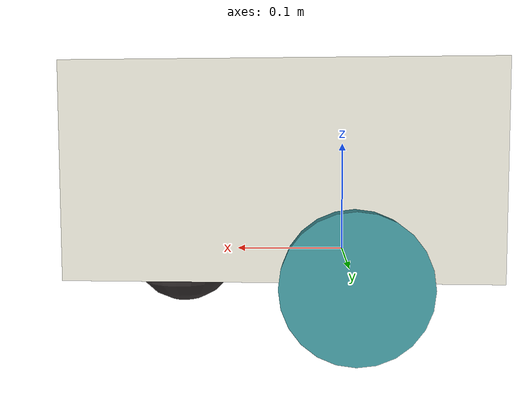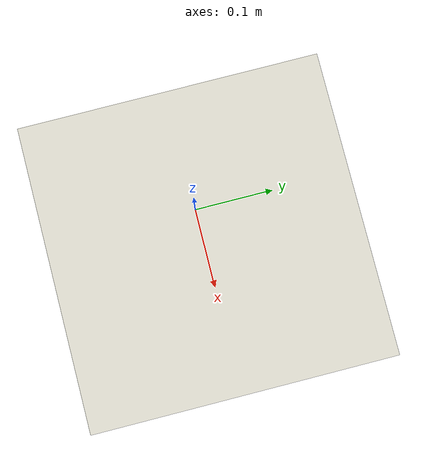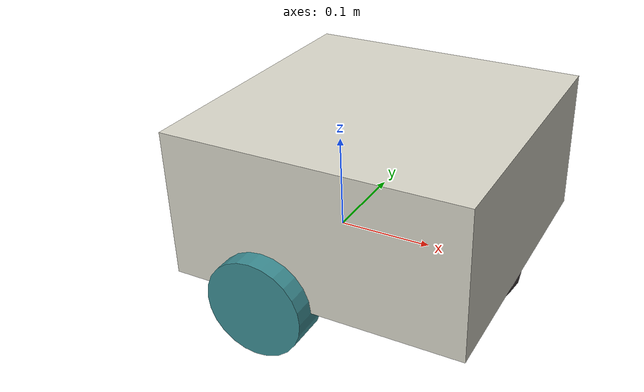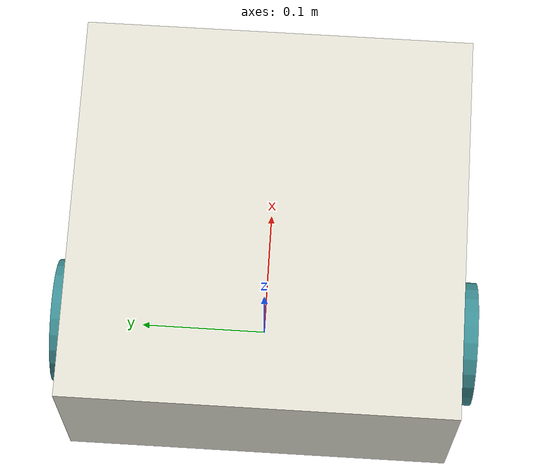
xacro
<?xml version="1.0"?>
<robot xmlns:xacro="http://www.ros.org/wiki/xacro">
    <!-- Robot size -->
    <!-- Length = 300mm-->
    <!-- Width = 300mm-->
    <!-- Height = 150mm-->

    <xacro:include filename="motor_functions.xacro" />

    <link name="base_link">
    </link>

    <!-- CHASSIS LINK -->

    <joint name="chassis_joint" type="fixed">
        <parent link="base_link"/>
        <child link="chassis_link"/>
        <origin xyz="-0.1 0.0 0.0" rpy="0.0 0.0 0.0"/>
    </joint>

    <link name="chassis_link">
        <visual>
            <origin xyz="0.15 0.0 0.075" rpy="0.0 0.0 0.0"/>
            <geometry>
                <box size="0.3 0.3 0.15"/>
            </geometry>
            <material name="WhiteGrey" />
        </visual>
        <collision>
            <origin xyz="0.15 0.0 0.075" rpy="0.0 0.0 0.0"/>
            <geometry>
                <box size="0.3 0.3 0.15"/>
            </geometry>
        </collision>
        <xacro:inertial_box mass="0.5" x="0.3" y="0.3" z="0.15">
            <origin xyz="0.15 0.0 0.075" rpy="0.0 0.0 0.0"/>
        </xacro:inertial_box>
    </link>

    <gazebo reference="chassis_link">
        <visual>
            <material>
                <ambient>0.8509 0.8431 0.7921 1.0</ambient>
                <diffuse>0.8509 0.8431 0.7921 1.0</diffuse>
                <specular>0.8509 0.8431 0.7921 1.0 1.0</specular>
            </material>
        </visual>
    </gazebo>

    <!-- LEFT WHEEL -->

    <joint name="left_wheel_joint" type="continuous">
        <parent link="base_link"/>
        <child link="left_wheel_link"/>
        <origin xyz="0.0 0.15 0.0" rpy="-${pi/2} 0.0 0.0"/>
        <axis xyz="0.0 0.0 1.0"/>
    </joint>

    <link name="left_wheel_link">
        <visual>
            <origin xyz="0.0 0.0 0.0" rpy="0.0 0.0 0.0"/>
            <geometry>
                <cylinder radius="0.05" length="0.04"/>
            </geometry>
            <material name="LightBlueGreen" />
        </visual>
        <collision>
            <origin xyz="0.0 0.0 0.0" rpy="0.0 0.0 0.0"/>
            <geometry>
                <cylinder radius="0.05" length="0.04"/>
            </geometry>
        </collision>
        <xacro:inertial_cylinder mass="0.1" length="0.04" radius="0.05">
            <origin xyz="0.0 0.0 0.0" rpy="0.0 0.0 0.0"/>
        </xacro:inertial_cylinder>
    </link>

    <gazebo reference="left_wheel_link">
        <visual>
            <material>
                <ambient>0.2353 0.5529 0.5764 1.0</ambient>
                <diffuse>0.2353 0.5529 0.5764 1.0</diffuse>
                <specular>0.2353 0.5529 0.5764 1.0 1.0</specular>
            </material>
        </visual>
    </gazebo>

    <!-- RIGHT WHEEL -->

    <joint name="right_wheel_joint" type="continuous">
        <parent link="base_link"/>
        <child link="right_wheel_link"/>
        <origin xyz="0.0 -0.15 0.0" rpy="${pi/2} 0.0 0.0"/>
        <axis xyz="0.0 0.0 1.0"/>
    </joint>

    <link name="right_wheel_link">
        <visual>
            <origin xyz="0.0 0.0 0.0" rpy="0.0 0.0 0.0"/>
            <geometry>
                <cylinder radius="0.05" length="0.04"/>
            </geometry>
            <material name="LightBlueGreen" />
        </visual>
        <collision>
            <origin xyz="0.0 0.0 0.0" rpy="0.0 0.0 0.0"/>
            <geometry>
                <cylinder radius="0.05" length="0.04"/>
            </geometry>
        </collision>
        <xacro:inertial_cylinder mass="0.1" length="0.04" radius="0.05">
            <origin xyz="0.0 0.0 0.0" rpy="0.0 0.0 0.0"/>
        </xacro:inertial_cylinder>
    </link>

    <gazebo reference="right_wheel_link">
        <visual>
            <material>
                <ambient>0.2353 0.5529 0.5764 1.0</ambient>
                <diffuse>0.2353 0.5529 0.5764 1.0</diffuse>
                <specular>0.2353 0.5529 0.5764 1.0 1.0</specular>
            </material>
        </visual>
    </gazebo>

    <!-- CASTER WHEEL -->

    <joint name="caster_wheel_joint" type="fixed">
        <parent link="chassis_link"/>
        <child link="caster_wheel_link"/>
        <origin xyz="0.25 0.0 0.0" rpy="0.0 0.0 0.0"/>
    </joint>

    <link name="caster_wheel_link">
        <visual>
            <origin xyz="0.0 0.0 0.0" rpy="0.0 0.0 0.0"/>
            <geometry>
                <sphere radius="0.05"/>
            </geometry>
            <material name="BrownBlack"/>
        </visual>
        <collision>
            <origin xyz="0.0 0.0 0.0" rpy="0.0 0.0 0.0"/>
            <geometry>
                <sphere radius="0.04"/>
            </geometry>
        </collision>
        <xacro:inertial_sphere mass="0.1" radius="0.05">
            <origin xyz="0.0 0.0 0.0" rpy="0.0 0.0 0.0"/>
        </xacro:inertial_sphere>
    </link>

    <gazebo reference="caster_wheel_link">
        <visual>
            <material>
                <ambient>0.2313 0.2078 0.2078 1.0</ambient>
                <diffuse>0.2313 0.2078 0.2078 1.0</diffuse>
                <specular>0.2313 0.2078 0.2078 1.0 1.0</specular>
            </material>
        </visual>
        <mu1 value="0.001"/>
        <mu2 value="0.001"/>
    </gazebo>

</robot>

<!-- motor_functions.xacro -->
<robot xmlns:xacro="http://www.ros.org/wiki/xacro">

    <!-- Colors -->
    <material name="WhiteGrey">
        <color rgba="${217/255} ${215/255} ${202/255} 1.0" /> **0.8509 0.8431 0.7921 1.0**
    </material>

    <material name="LightBlueGreen">
        <color rgba="${60/255} ${141/255} ${147/255} 1.0" />**0.2353 0.5529 0.5764 1.0**
    </material>

    <material name="DarkBlueGreen">
        <color rgba="${31/255} ${69/255} ${77/255} 1.0" />**0.1215 0.2705 0.3019 1.0**
    </material>

    <material name="Brown">
        <color rgba="${115/255} ${96/255} ${79/255} 1.0" />**0.4509 0.3764 0.3098 1.0**
    </material>

    <material name="BrownBlack">
        <color rgba="${59/255} ${53/255} ${53/255} 1.0" />**0.2313 0.2078 0.2078 1.0**
    </material>

    <!-- Define equations that calculate the inertias-->

    <xacro:macro name="inertial_box" params="mass x y z *origin">
        <inertial>
            <xacro:insert_block name="origin" />
            <mass value="${mass}" />
            <inertia ixx="${(1/12) * mass * (y*y+z*z)}" ixy="0.0" ixz="0.0"
                iyy="${(1/12) * mass * (x*x+z*z)}" iyz="0.0" izz="${(1/12) * mass * (x*x+y*y)}" />
        </inertial>
    </xacro:macro>

    <xacro:macro name="inertial_cylinder" params="mass length radius *origin">
        <inertial>
            <xacro:insert_block name="origin" />
            <mass value="${mass}" />
            <inertia ixx="${(1/12) * mass * (3*radius*radius + length*length)}" ixy="0.0" ixz="0.0"
                iyy="${(1/12) * mass * (3*radius*radius + length*length)}" iyz="0.0"
                izz="${(1/2) * mass * (radius*radius)}" />
        </inertial>
    </xacro:macro>

    <xacro:macro name="inertial_sphere" params="mass radius *origin">
        <inertial>
            <xacro:insert_block name="origin"/>
            <mass value="${mass}" />
            <inertia ixx="${(2/5) * mass * (radius*radius)}" ixy="0.0" ixz="0.0"
                    iyy="${(2/5) * mass * (radius*radius)}" iyz="0.0"
                    izz="${(2/5) * mass * (radius*radius)}" />
        </inertial>
    </xacro:macro>

</robot>
